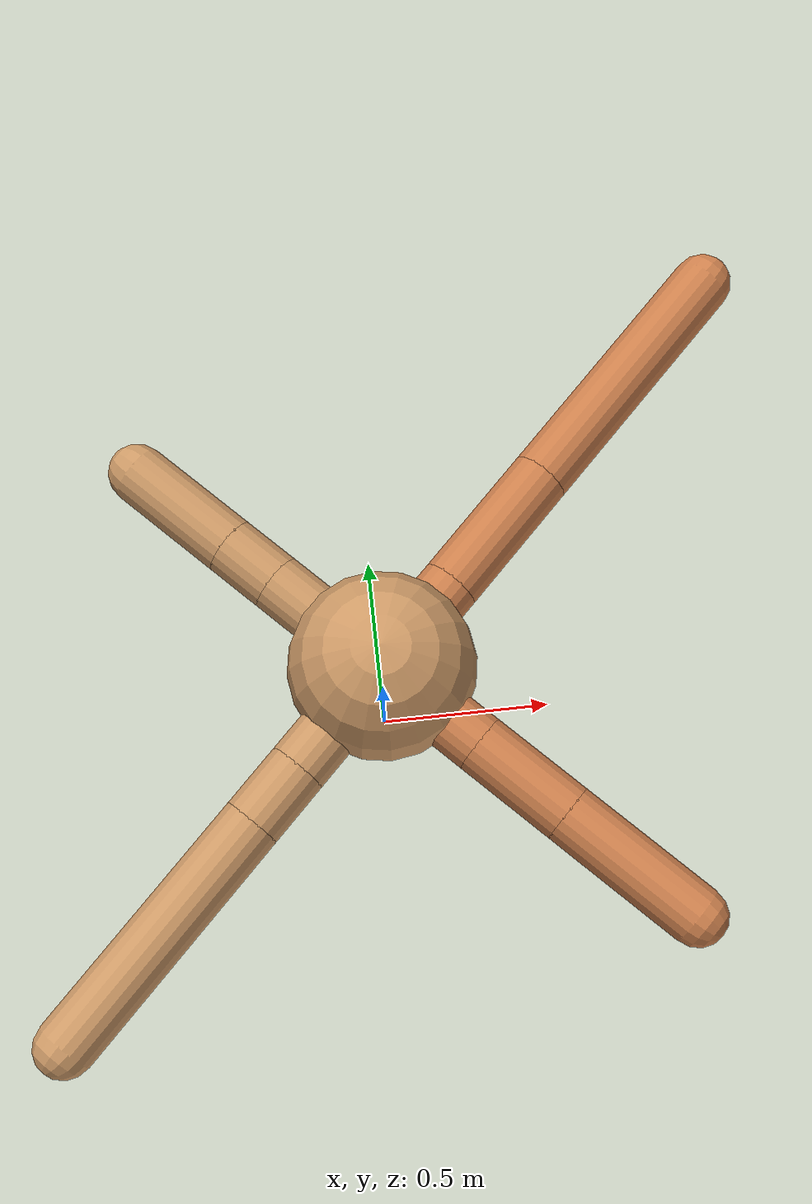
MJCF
<mujoco model="ant">
  <compiler angle="degree" coordinate="local" inertiafromgeom="true" />
  <option integrator="RK4" timestep="0.01" />
  <custom>
    <numeric data="0.0 0.0 0.55 1.0 0.0 0.0 0.0 0.0 1.0 0.0 -1.0 0.0 -1.0 0.0 1.0" name="init_qpos" />
  </custom>
  <default>
    <joint armature="1" damping="1" limited="true" />
    <geom conaffinity="0" condim="3" density="5.0" friction="1.5 0.1 0.1" margin="0.01" rgba="0.8 0.6 0.4 1" />
  </default>
  <worldbody>
    <body name="torso" pos="0 0 0.75">
      <geom name="torso_geom" pos="0 0 0" size="0.25" type="sphere" />

      <body name="front_left_leg" pos="0 0 0">
        <geom fromto="0.0 0.0 0.0 0.20322584756578166 0.20322584756578166 0.0" name="aux_1_geom" size="0.08" type="capsule" rgba=".8 .5 .3 1" />
        <body name="aux_1" pos="0.20322584756578166 0.20322584756578166 0.0">
          <joint axis="0 0 1" name="hip_1" pos="0.0 0.0 0.0" range="-40 40" type="hinge" />
          <geom fromto="0.0 0.0 0.0 0.27203370386401476 0.27203370386401476 0.0" name="left_leg_geom" size="0.08" type="capsule" rgba=".8 .5 .3 1" />
          <body pos="0.27203370386401476 0.27203370386401476 0.0" name="front_left_foot">
            <joint axis="-1 1 0" name="ankle_1" pos="0.0 0.0 0.0" range="30 100" type="hinge" />
            <geom fromto="0.0 0.0 0.0 0.5147530187265202 0.5147530187265202 0.0" name="left_ankle_geom" size="0.08" type="capsule" rgba=".8 .5 .3 1" />
          </body>
        </body>
      </body>
      <body name="front_right_leg" pos="0 0 0">
        <geom fromto="0.0 0.0 0.0 -0.25490129274813617 0.25490129274813617 0.0" name="aux_2_geom" size="0.08" type="capsule" />
        <body name="aux_2" pos="-0.25490129274813617 0.25490129274813617 0.0">
          <joint axis="0 0 1" name="hip_2" pos="0.0 0.0 0.0" range="-40 40" type="hinge" />
          <geom fromto="0.0 0.0 0.0 -0.11327121001325108 0.11327121001325108 0.0" name="right_leg_geom" size="0.08" type="capsule" />
          <body pos="-0.11327121001325108 0.11327121001325108 0.0" name="front_right_foot">
            <joint axis="1 1 0" name="ankle_2" pos="0.0 0.0 0.0" range="-100 -30" type="hinge" />
            <geom fromto="0.0 0.0 0.0 -0.22997119875794617 0.22997119875794617 0.0" name="right_ankle_geom" size="0.08" type="capsule" />
          </body>
        </body>
      </body>
      <body name="left_back_leg" pos="0 0 0">
        <geom fromto="0.0 0.0 0.0 -0.2427865173604766 -0.2427865173604766 0.0" name="aux_3_geom" size="0.08" type="capsule" />
        <body name="aux_3" pos="-0.2427865173604766 -0.2427865173604766 0.0">
          <joint axis="0 0 1" name="hip_3" pos="0.0 0.0 0.0" range="-40 40" type="hinge" />
          <geom fromto="0.0 0.0 0.0 -0.12872704630822215 -0.12872704630822215 0.0" name="back_leg_geom" size="0.08" type="capsule" />
          <body pos="-0.12872704630822215 -0.12872704630822215 0.0" name="left_back_foot">
            <joint axis="-1 1 0" name="ankle_3" pos="0.0 0.0 0.0" range="-100 -30" type="hinge" />
            <geom fromto="0.0 0.0 0.0 -0.5079514132623971 -0.5079514132623971 0.0" name="third_ankle_geom" size="0.08" type="capsule" />
          </body>
        </body>
      </body>
      <body name="right_back_leg" pos="0 0 0">
        <geom fromto="0.0 0.0 0.0 0.23012710404102776 -0.23012710404102776 0.0" name="aux_4_geom" size="0.08" type="capsule" rgba=".8 .5 .3 1" />
        <body name="aux_4" pos="0.23012710404102776 -0.23012710404102776 0.0">
          <joint axis="0 0 1" name="hip_4" pos="0.0 0.0 0.0" range="-40 40" type="hinge" />
          <geom fromto="0.0 0.0 0.0 0.20227370513014337 -0.20227370513014337 0.0" name="rightback_leg_geom" size="0.08" type="capsule" rgba=".8 .5 .3 1" />
          <body pos="0.20227370513014337 -0.20227370513014337 0.0" name="right_back_foot">
            <joint axis="1 1 0" name="ankle_4" pos="0.0 0.0 0.0" range="30 100" type="hinge" />
            <geom fromto="0.0 0.0 0.0 0.29201190120278137 -0.29201190120278137 0.0" name="fourth_ankle_geom" size="0.08" type="capsule" rgba=".8 .5 .3 1" />
          </body>
        </body>
      </body>
    </body>
  </worldbody>
  <actuator>
    <motor ctrllimited="true" ctrlrange="-1.0 1.0" joint="hip_4" gear="150" />
    <motor ctrllimited="true" ctrlrange="-1.0 1.0" joint="ankle_4" gear="150" />
    <motor ctrllimited="true" ctrlrange="-1.0 1.0" joint="hip_1" gear="150" />
    <motor ctrllimited="true" ctrlrange="-1.0 1.0" joint="ankle_1" gear="150" />
    <motor ctrllimited="true" ctrlrange="-1.0 1.0" joint="hip_2" gear="150" />
    <motor ctrllimited="true" ctrlrange="-1.0 1.0" joint="ankle_2" gear="150" />
    <motor ctrllimited="true" ctrlrange="-1.0 1.0" joint="hip_3" gear="150" />
    <motor ctrllimited="true" ctrlrange="-1.0 1.0" joint="ankle_3" gear="150" />
  </actuator>
</mujoco>
